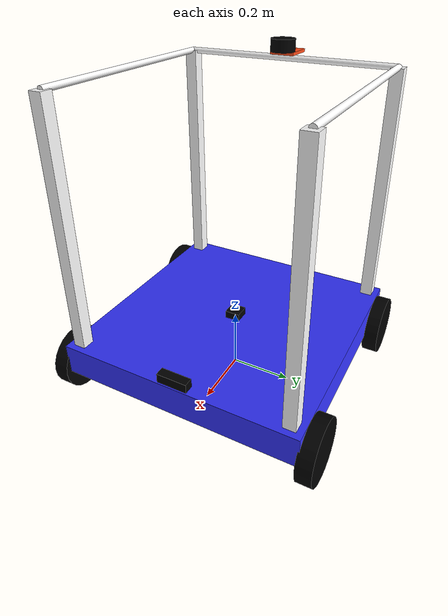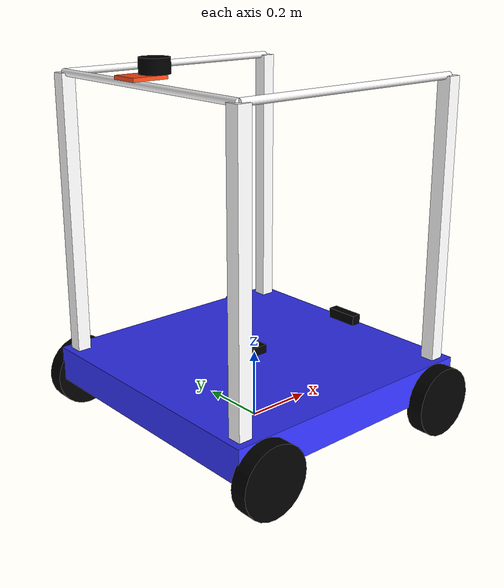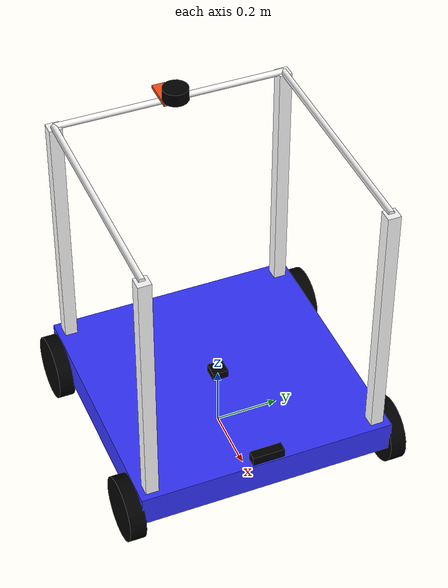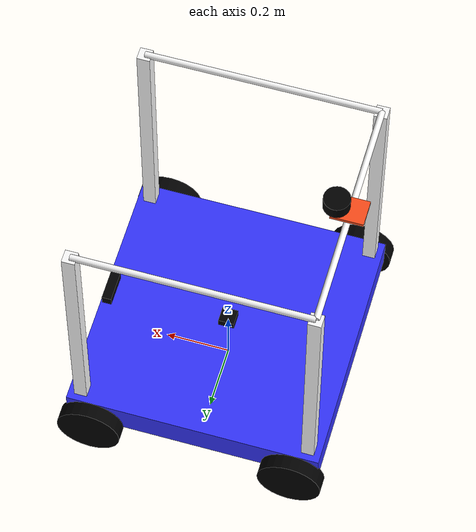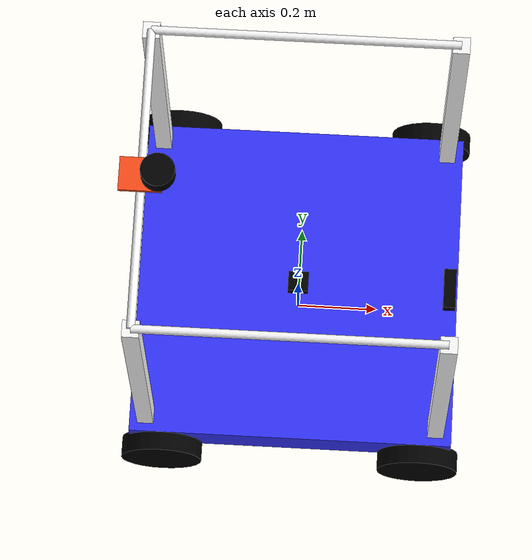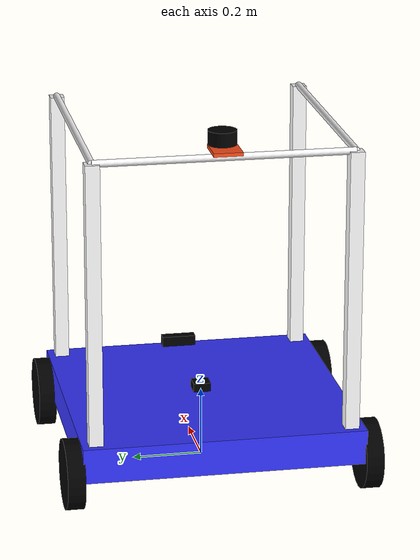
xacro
<?xml version="1.0"?>
<robot xmlns:xacro="http://www.ros.org/wiki/xacro" name="my_robot">

    <xacro:include filename="common_properties.xacro"/>

    <xacro:include filename="mobile_base.xacro"/>

    <xacro:include filename="lidar.xacro"/>

    <xacro:include filename="camera.xacro"/>

    <xacro:include filename="gazebo_control.xacro"/>

    <gazebo>
        <plugin filename="ignition-gazebo-pose-publisher-system" name="ignition::gazebo::systems::PosePublisher">
            <publish_link_pose>true</publish_link_pose>
            <publish_collision_pose>false</publish_collision_pose>
            <publish_visual_pose>false</publish_visual_pose>
            <publish_nested_model_pose>true</publish_nested_model_pose>
            <use_pose_vector_msg>true</use_pose_vector_msg>
            <static_publisher>true</static_publisher>
            <static_update_frequency>100</static_update_frequency>
       </plugin>
    </gazebo>

</robot>

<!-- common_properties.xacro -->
<robot xmlns:xacro="http://www.ros.org/wiki/xacro">

    <material name="white"> <color rgba="1 1 1 1"/> </material>
    <material name="orange"> <color rgba="1 0.3 0.1 1"/> </material>
    <material name="blue"> <color rgba="0.2 0.2 1 1"/> </material>
    <material name="black"> <color rgba="0 0 0 1"/> </material>
    <material name="red"> <color rgba="1 0 0 1"/> </material>

    <xacro:macro name="inertial_box" params="mass x y z *origin">
        <inertial>
            <xacro:insert_block name="origin"/>
            <mass value="${mass}"/>
            <inertia ixx="${(1/12) * mass * (y*y + z*z)}" ixy="0.0" ixz="0.0"
                     iyy="${(1/12) * mass * (x*x + z*z)}" iyz="0.0"
                     izz="${(1/12) * mass * (x*x + y*y)}"/>
        </inertial>
    </xacro:macro>

    <xacro:macro name="inertial_cylinder" params="mass length radius *origin">
        <inertial>
            <xacro:insert_block name="origin"/>
            <mass value="${mass}"/>
            <inertia ixx="${(1/12) * mass * (3*radius*radius + length*length)}" ixy="0.0" ixz="0.0"
                     iyy="${(1/12) * mass * (3*radius*radius + length*length)}" iyz="0.0"
                     izz="${(0.5) * mass * (radius*radius)}"/>
        </inertial>
    </xacro:macro>

    <xacro:macro name="joint_dynamics">
        <dynamics damping="0.5" friction="0.1"/>
    </xacro:macro>

</robot>

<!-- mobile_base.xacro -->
<robot xmlns:xacro="http://www.ros.org/wiki/xacro">

    <xacro:property name="base_length" value="0.8"/>
    <xacro:property name="base_width" value="0.8"/>
    <xacro:property name="base_height" value="0.1"/>
    <xacro:property name="wheel_radius" value="0.10"/>
    <xacro:property name="base_z_offset" value="${wheel_radius}"/>

    <xacro:property name="wheel_thickness" value="0.05"/>
    <xacro:property name="wheel_offset_x" value="0.32"/>
    <xacro:property name="wheel_offset_y" value="0.42"/>

    <xacro:property name="pillar_height" value="0.8"/>
    <xacro:property name="pillar_side" value="0.04"/>
    <xacro:property name="pillar_offset_x" value="0.36"/>
    <xacro:property name="pillar_offset_y" value="0.36"/>

    <xacro:property name="bar_radius" value="0.01"/>
    <xacro:property name="bar_length" value="0.72"/>

    <link name="base_footprint"/>

    <joint name="base_joint" type="fixed">
        <parent link="base_footprint"/>
        <child link="base_link"/>
        <origin xyz="0 0 ${base_z_offset}" rpy="0 0 0"/>
    </joint>

    <link name="base_link">
        <visual>
            <geometry> <box size="${base_length} ${base_width} ${base_height}"/> </geometry>
            <origin xyz="0 0 ${base_height/2}" rpy="0 0 0"/>
            <material name="blue"/>
        </visual>
        <collision>
            <geometry> <box size="${base_length} ${base_width} ${base_height}"/> </geometry>
            <origin xyz="0 0 ${base_height/2}" rpy="0 0 0"/>
        </collision>
        <xacro:inertial_box mass="15.0" x="${base_length}" y="${base_width}" z="${base_height}">
            <origin xyz="0 0 ${base_height/2}" rpy="0 0 0"/>
        </xacro:inertial_box>
    </link>

    <xacro:macro name="wheel" params="prefix x_reflect y_reflect">
        <link name="${prefix}_wheel">
            <visual>
                <geometry> <cylinder radius="${wheel_radius}" length="${wheel_thickness}"/> </geometry>
                <origin xyz="0 0 0" rpy="${pi/2} 0 0"/>
                <material name="black"/>
            </visual>
            <collision>
                <geometry> <cylinder radius="${wheel_radius}" length="${wheel_thickness}"/> </geometry>
                <origin xyz="0 0 0" rpy="${pi/2} 0 0"/>
            </collision>
            <xacro:inertial_cylinder mass="0.5" length="${wheel_thickness}" radius="${wheel_radius}">
                <origin xyz="0 0 0" rpy="${pi/2} 0 0"/>
            </xacro:inertial_cylinder>
        </link>

        <joint name="${prefix}_wheel_joint" type="continuous">
            <parent link="base_link"/>
            <child link="${prefix}_wheel"/>
            <origin xyz="${x_reflect*wheel_offset_x} ${y_reflect*wheel_offset_y} 0" rpy="0 0 0"/>
            <axis xyz="0 1 0"/>
            <dynamics damping="0.1" friction="0.1"/>
        </joint>
    </xacro:macro>

    <xacro:macro name="pillar" params="prefix x_reflect y_reflect">
        <link name="${prefix}_pillar">
            <visual> <geometry> <box size="${pillar_side} ${pillar_side} ${pillar_height}"/> </geometry> <material name="white"/> </visual>
            <collision> <geometry> <box size="${pillar_side} ${pillar_side} ${pillar_height}"/> </geometry> </collision>
            <xacro:inertial_box mass="0.2" x="${pillar_side}" y="${pillar_side}" z="${pillar_height}">
                <origin xyz="0 0 0" rpy="0 0 0"/>
            </xacro:inertial_box>
        </link>
        <joint name="${prefix}_pillar_joint" type="fixed">
            <parent link="base_link"/>
            <child link="${prefix}_pillar"/>
            <origin xyz="${x_reflect*pillar_offset_x} ${y_reflect*pillar_offset_y} ${pillar_height/2 + base_height}" rpy="0 0 0"/>
        </joint>
    </xacro:macro>

    <xacro:macro name="crossbars" params="side_name length r p y x_pos y_pos">
        <link name="${side_name}_bar">
            <visual> <geometry> <cylinder radius="${bar_radius}" length="${length}"/> </geometry> <material name="white"/> </visual>
            <collision> <geometry> <cylinder radius="${bar_radius}" length="${length}"/> </geometry> </collision>
            <xacro:inertial_cylinder mass="0.1" length="${length}" radius="${bar_radius}">
                <origin xyz="0 0 0" rpy="0 0 0"/>
            </xacro:inertial_cylinder>
        </link>
        <joint name="${side_name}_bar_joint" type="fixed">
            <parent link="base_link"/>
            <child link="${side_name}_bar"/>
            <origin xyz="${x_pos} ${y_pos} ${pillar_height + base_height}" rpy="${r} ${p} ${y}"/>
        </joint>
    </xacro:macro>

    <xacro:wheel prefix="front_left" x_reflect="1" y_reflect="1"/>
    <xacro:wheel prefix="front_right" x_reflect="1" y_reflect="-1"/>
    <xacro:wheel prefix="back_left" x_reflect="-1" y_reflect="1"/>
    <xacro:wheel prefix="back_right" x_reflect="-1" y_reflect="-1"/>

    <xacro:pillar prefix="front_left" x_reflect="1" y_reflect="1"/>
    <xacro:pillar prefix="front_right" x_reflect="1" y_reflect="-1"/>
    <xacro:pillar prefix="back_left" x_reflect="-1" y_reflect="1"/>
    <xacro:pillar prefix="back_right" x_reflect="-1" y_reflect="-1"/>

    <xacro:crossbars side_name="back" length="${bar_length}" r="${pi/2}" p="0" y="0" x_pos="${-pillar_offset_x}" y_pos="0"/>
    <xacro:crossbars side_name="right" length="${bar_length}" r="0" p="${pi/2}" y="0" x_pos="0" y_pos="${-pillar_offset_y}"/>
    <xacro:crossbars side_name="left" length="${bar_length}" r="0" p="${pi/2}" y="0" x_pos="0" y_pos="${pillar_offset_y}"/>

    <xacro:macro name="wheel_gazebo" params="prefix">
        <gazebo reference="${prefix}_wheel">
            <mu1 value="0.2"/>
            <mu2 value="0.2"/>
            <fdir1 value="1 0 0"/>
            <kp value="1000000.0"/>
            <kd value="10.0"/>
            <material>Gazebo/Black</material>
        </gazebo>
    </xacro:macro>

    <xacro:wheel_gazebo prefix="front_left"/>
    <xacro:wheel_gazebo prefix="front_right"/>
    <xacro:wheel_gazebo prefix="back_left"/>
    <xacro:wheel_gazebo prefix="back_right"/>

    <gazebo reference="base_link">
        <material>Gazebo/Blue</material>
    </gazebo>

    <link name="imu_link">
        <visual>
            <geometry> <box size="0.05 0.05 0.05"/> </geometry>
            <material name="black"/>
        </visual>
        <xacro:inertial_box mass="0.01" x="0.05" y="0.05" z="0.05">
            <origin xyz="0 0 0" rpy="0 0 0"/>
        </xacro:inertial_box>
    </link>

    <joint name="imu_joint" type="fixed">
        <parent link="base_link"/>
        <child link="imu_link"/>
        <origin xyz="0 0 0.1"/>
    </joint>

    <gazebo reference="imu_link">
        <sensor name="imu_sensor" type="imu">
            <always_on>1</always_on>
            <update_rate>100</update_rate>
            <visualize>true</visualize>
            <topic>/imu</topic>
            <gz_frame_id>imu_link</gz_frame_id>
            <plugin filename="ignition-gazebo-imu-system" name="ignition::gazebo::systems::Imu">
            </plugin>
        </sensor>
    </gazebo>

</robot>

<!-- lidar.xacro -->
<robot xmlns:xacro="http://www.ros.org/wiki/xacro">

    <xacro:macro name="lidar" params="prefix x_pos y_pos z_pos rotation">

        <joint name="${prefix}_bracket_joint" type="fixed">
            <parent link="base_link"/>
            <child link="${prefix}_bracket"/>
            <origin xyz="${x_pos} ${y_pos} ${z_pos}" rpy="0 0 ${rotation}"/>
        </joint>

        <link name="${prefix}_bracket">
            <visual>
                <geometry> <box size="0.1 0.08 0.01"/> </geometry>
                <material name="orange"/>
            </visual>
            <collision>
                <geometry> <box size="0.1 0.08 0.01"/> </geometry>
            </collision>
        </link>

        <joint name="${prefix}_laser_joint" type="fixed">
            <parent link="${prefix}_bracket"/>
            <child link="${prefix}_laser_frame"/>
            <origin xyz="0.04 0 0.025" rpy="0 0 0"/>
        </joint>

        <link name="${prefix}_laser_frame">
            <visual>
                <geometry> <cylinder radius="0.04" length="0.04"/> </geometry>
                <material name="black"/>
            </visual>
            <collision>
                <geometry> <cylinder radius="0.04" length="0.04"/> </geometry>
            </collision>
            <xacro:inertial_cylinder mass="0.1" length="0.04" radius="0.04">
                <origin xyz="0 0 0" rpy="0 0 0"/>
            </xacro:inertial_cylinder>
        </link>

        <gazebo reference="${prefix}_laser_frame">
            <sensor name="${prefix}_laser" type="gpu_lidar">
                <pose>0 0 0 0 0 0</pose>
                <visualize>true</visualize>
                <update_rate>10</update_rate>
                <always_on>true</always_on>
                <lidar>
                    <scan>
                        <horizontal>
                            <samples>360</samples>
                            <resolution>1</resolution>
                            <min_angle>-3.14159</min_angle>
                            <max_angle>3.14159</max_angle>
                        </horizontal>
                    </scan>
                    <range>
                        <min>0.3</min>
                        <max>60.0</max>
                        <resolution>0.01</resolution>
                    </range>
                </lidar>
                <topic>/${prefix}_scan</topic>
                <gz_frame_id>${prefix}_laser_frame</gz_frame_id>
            </sensor>
        </gazebo>
    </xacro:macro>

    <xacro:lidar prefix="front_right" x_pos="-0.36" y_pos="0.0" z_pos="0.92" rotation="0.0"/>
    </robot>

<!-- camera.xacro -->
<robot xmlns:xacro="http://www.ros.org/wiki/xacro">

    <joint name="camera_joint" type="fixed">
        <parent link="base_link"/>
        <child link="camera_link"/>
        <origin xyz="0.38 0.0 0.115" rpy="0 0 0"/>
    </joint>

    <link name="camera_link">
        <visual>
            <geometry> <box size="0.03 0.1 0.03"/> </geometry>
            <material name="black"/>
        </visual>
        <collision>
            <geometry> <box size="0.03 0.1 0.03"/> </geometry>
        </collision>
        <xacro:inertial_box mass="0.05" x="0.03" y="0.1" z="0.03">
            <origin xyz="0 0 0" rpy="0 0 0"/>
        </xacro:inertial_box>
    </link>

    <joint name="camera_depth_joint" type="fixed">
        <parent link="camera_link"/>
        <child link="camera_depth_frame"/>
        <!-- 🟢 الزوايا أصفار لكي ينظر للأمام مباشرة -->
        <origin xyz="0 0 0" rpy="0 0 0"/>
    </joint>
    <link name="camera_depth_frame"/>

    <gazebo reference="camera_link">
        <sensor name="depth_camera" type="gpu_lidar">
            <always_on>1</always_on>
            <update_rate>5.0</update_rate>
            <visualize>true</visualize>
            <topic>camera</topic>
            <!-- 🟢 تم إرجاع الإطار الوهمي لتفادي انهيار جازيبو واختفاء الخريطة -->
            <gz_frame_id>camera_depth_frame</gz_frame_id>
            <lidar>
                <scan>
                    <horizontal>
                        <samples>60</samples>
                        <resolution>1</resolution>
                        <min_angle>-0.8</min_angle>
                        <max_angle>0.8</max_angle>
                    </horizontal>
                    <vertical>
                        <samples>10</samples>
                        <resolution>1</resolution>
                        <!-- 🟢 الزاوية السالبة هنا تجعله ينظر للأسفل نحو الصناديق -->
                        <min_angle>-0.4</min_angle>
                        <max_angle>0.1</max_angle>
                    </vertical>
                </scan>
                <range>
                    <min>0.15</min>
                    <max>3.5</max>
                    <resolution>0.01</resolution>
                </range>
            </lidar>
        </sensor>
    </gazebo>

</robot>
